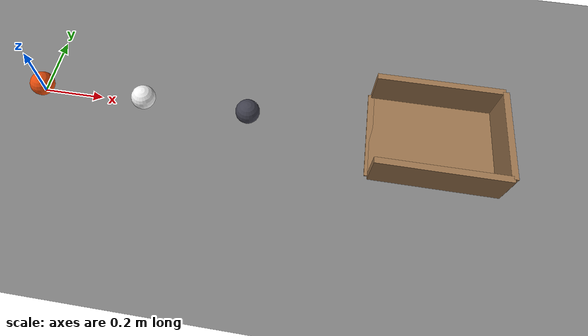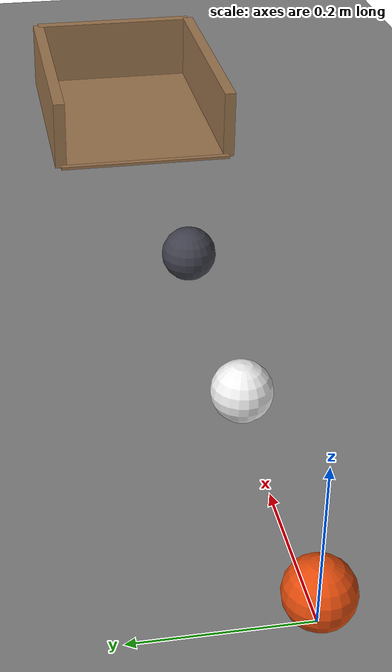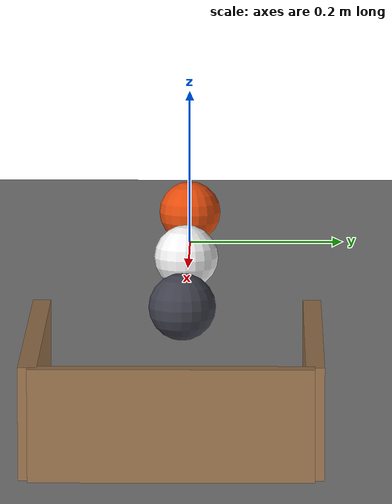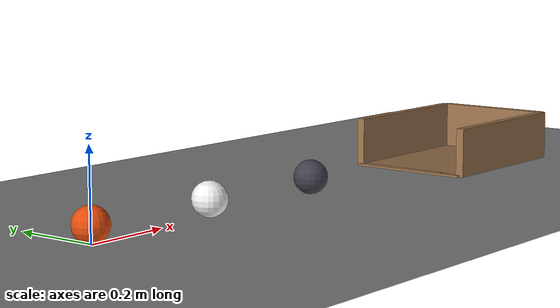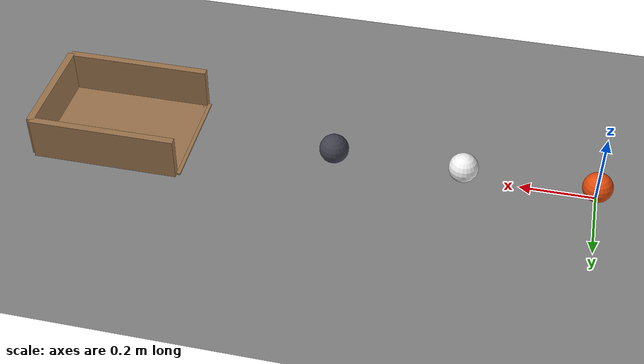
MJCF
<mujoco model="three_ball_chain_into_a_cup">
  <compiler angle="radian"/>
  <option timestep="0.002"/>
  <worldbody>
    <geom name="floor" type="plane" size="6 6 0.1" friction="0.8 0.002 0.0002"/>
    <body name="ball1" pos="0 0 0.04">
      <freejoint/>
      <geom name="ball1" type="sphere" pos="0 0 0" size="0.04" mass="0.1" condim="6" friction="0.6 0.002 0.0002" solref="0.01 0.2" rgba="0.9 0.3 0.05 1"/>
    </body>
    <body name="ball2" pos="0.35 0 0.04">
      <freejoint/>
      <geom name="ball2" type="sphere" pos="0 0 0" size="0.04" mass="0.1" condim="6" friction="0.6 0.002 0.0002" solref="0.01 0.2" rgba="0.95 0.95 0.95 1"/>
    </body>
    <body name="ball3" pos="0.7 0 0.04">
      <freejoint/>
      <geom name="ball3" type="sphere" pos="0 0 0" size="0.04" mass="0.1" condim="6" friction="0.6 0.002 0.0002" solref="0.01 0.2" rgba="0.25 0.25 0.3 1"/>
    </body>
    <body name="cup">
      <geom name="cup_base" type="box" pos="1.3 0 0.0025" size="0.2 0.15 0.0025" friction="1 0.02 0.01" solref="0.01 1" rgba="0.6 0.45 0.3 1"/>
      <geom name="cup_near_wall" type="box" pos="1.1 0 0.0025" size="0.01 0.15 0.0025" friction="1 0.02 0.01" solref="0.01 1" rgba="0.6 0.45 0.3 1"/>
      <geom name="cup_far_wall" type="box" pos="1.5 0 0.06" size="0.01 0.15 0.06" friction="1 0.02 0.01" solref="0.01 1" rgba="0.6 0.45 0.3 1"/>
      <geom name="cup_left_wall" type="box" pos="1.3 0.15 0.06" size="0.2 0.01 0.06" friction="1 0.02 0.01" solref="0.01 1" rgba="0.6 0.45 0.3 1"/>
      <geom name="cup_right_wall" type="box" pos="1.3 -0.15 0.06" size="0.2 0.01 0.06" friction="1 0.02 0.01" solref="0.01 1" rgba="0.6 0.45 0.3 1"/>
    </body>
  </worldbody>
  <keyframe>
    <key name="start" qpos="0 0 0.04 1 0 0 0 0.35 0 0.04 1 0 0 0 0.7 0 0.04 1 0 0 0" qvel="3.5 0 0 0 87.5 0 0 0 0 0 0 0 0 0 0 0 0 0"/>
  </keyframe>
</mujoco>
